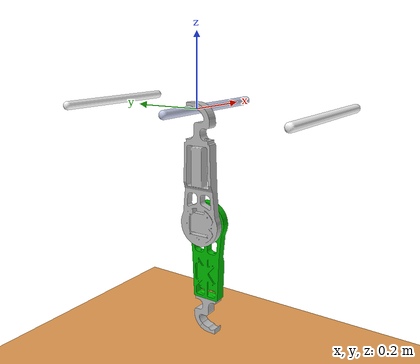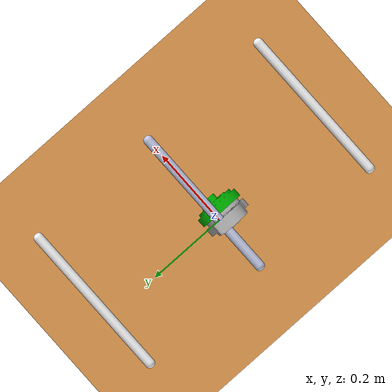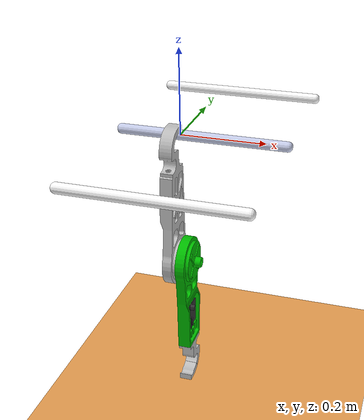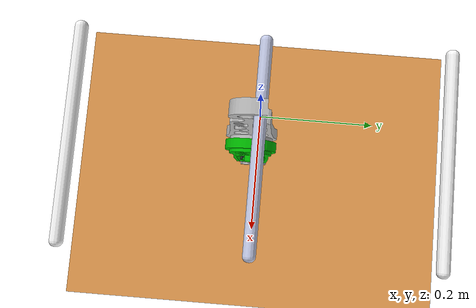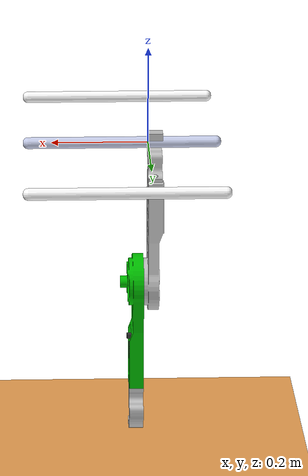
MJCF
<mujoco model="20220510_ShwingBotV1">
    <compiler angle="radian" meshdir="meshes/"/>
    <size njmax="500" nconmax="100" />
    <contact>
        <exclude body1="hook_1" body2="link_2" />
        <exclude body1="base_stick" body2="hook_1" />
    </contact>
    <asset>
        <texture name="texplane" type="2d" builtin="checker" rgb1=".867 .541 .236" rgb2=".953 .694 .392"
            width="100" height="100"/>
        <texture type="skybox" builtin="gradient" width="128" height="128" rgb1="0.0 0.699 0.839"
            rgb2="0.0 0.699 0.839"/>
        <material name='MatPlane' reflectance='0.0' texture="texplane" texrepeat="5 5" texuniform="true"/>
        <material name='black_metal' reflectance='0.2' shininess='0.5' rgba="0.15 0.15 0.15 1"/>
        <material name='black_rough_metal' reflectance='0.1' shininess='0.3' rgba="0.0 0.0 0.0 1"/>
        <material name='wood' reflectance='0.1' shininess='0.3' rgba="0.58 0.43 0.2 1"/>
        <mesh name="stick_2" file="stick_2.STL" />
        <mesh name="hook_1" file="hook_1.STL" />
        <mesh name="link_2" file="link_2.STL" />
        <mesh name="hook_2_lower" file="hook_2_lower.STL" />
        <mesh name="hook_2_upper_lower" file="hook_2_upper.STL" />
        <mesh name="hook_2_upper_tip" file="hook_2_upper_tip.STL" />
        <mesh name="IMU" file="IMU.STL" />
        <mesh name="stick_1" file="stick_1.STL" />
    </asset>
    <worldbody>
        <light directional='false' diffuse='1.0 1.0 1.0' specular='0.3 0.3 0.3' pos='1.5 -1.0 4.0' dir='0 -.15 -1'/>
        <geom name='floor' pos='0 0 -0.75' size='10 10 10' type='plane' material="MatPlane" condim='3'/>
        <geom name='stick_target' pos="0 0.34 0" type="mesh" rgba="1 1 1 1" mesh="stick_2" />
        <geom name='stick_start' pos="0 -0.34 0" type="mesh" rgba="1 1 1 1" mesh="stick_1" />
        <body name="base_stick" pos="0 0 0">
            <geom name='stick_base' type="mesh" rgba="0.79216 0.81961 0.93333 1" mesh="stick_2" />
            <body name="hook_1" pos="0 0 0" quat="0.707105 -0.707108 0 0">
            <inertial pos="-0.0074828 0.23347 -0.020697" quat="0.703762 0.710413 -0.00403474 -0.00393152" mass="1.0419" diaginertia="0.00170863 0.00118074 0.000717443" />
            <joint name="virtual_joint_hook_1" pos="0 0 0" axis="1 0 0" damping="0.044" />
            <geom name='hook_1' type="mesh" rgba="0.75294 0.75294 0.75294 1" mesh="hook_1" />
                <body name="link_2" pos="0.0221 0.31401 -0.02">
                    <inertial pos="0.00109212 0.124776 0.00088714" quat="0.695157 0.718837 -0.00537166 -0.000151466" mass="0.631065" diaginertia="0.00412099 0.00373661 0.000438013" />
                    <joint name="joint_1" pos="0 0 0" axis="1 0 0" damping="0.06"/>
                    <geom name='link_2' type="mesh" rgba="0 0.75294 0 1" mesh="link_2" />
                    <geom pos="0.00959 0.15306 0.0015645" quat="0.707105 0 0.707108 0" type="mesh" rgba="0.2 0.2 0.2 1" mesh="IMU" />
                    <body name="hook_2" pos="-0.0221 0.31401 -0.02">
                        <geom name='hook_2_lower' type="mesh" rgba="0.75294 0.75294 0.75294 1" mesh="hook_2_lower" />
                        <geom name='hook_2_upper' type="mesh" rgba="0.75294 0.75294 0.75294 1" mesh="hook_2_upper_lower" />
                        <body name="hook_2_tip">
                            <geom name='hook_2_tip' type="mesh" rgba="0.75294 0.75294 0.75294 1" mesh="hook_2_upper_tip" />
                        </body>
                    </body>
                </body>
            </body>
        </body>
    </worldbody>

    <actuator>
        <motor joint="joint_1" name="elbow_motor" gear="1" forcelimited="true" forcerange="-5 5"/>
    </actuator>
</mujoco>
